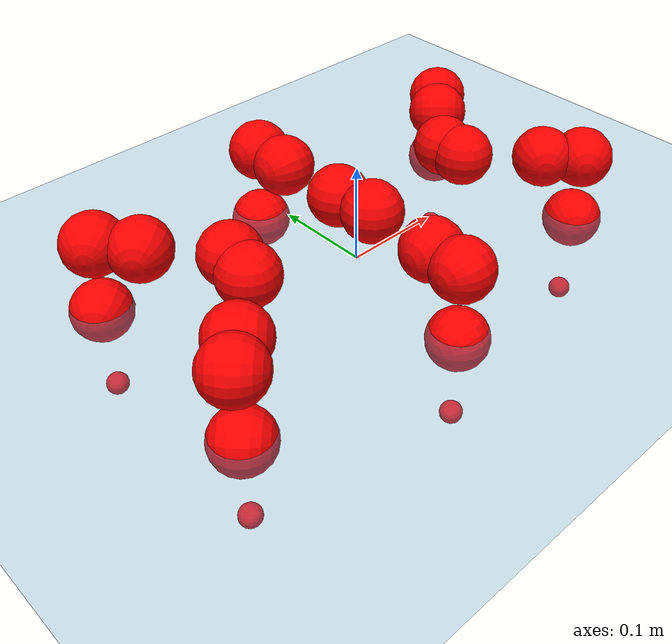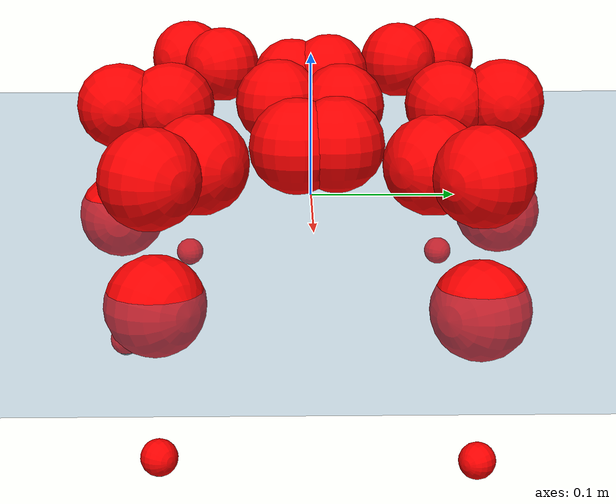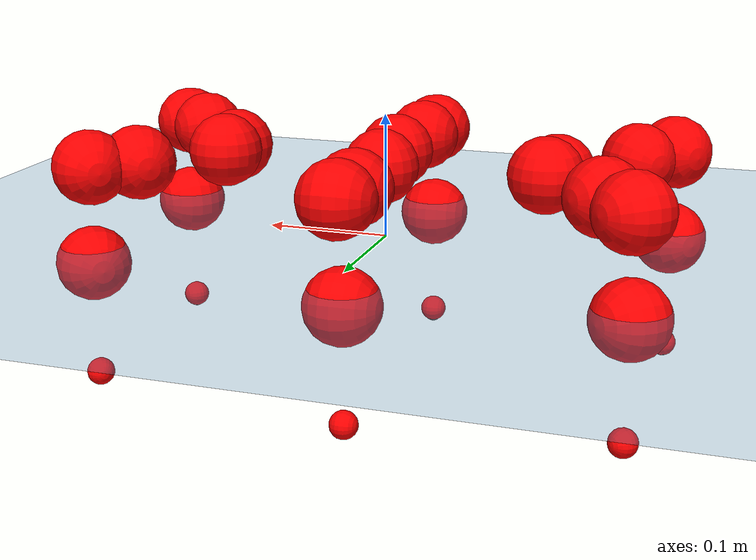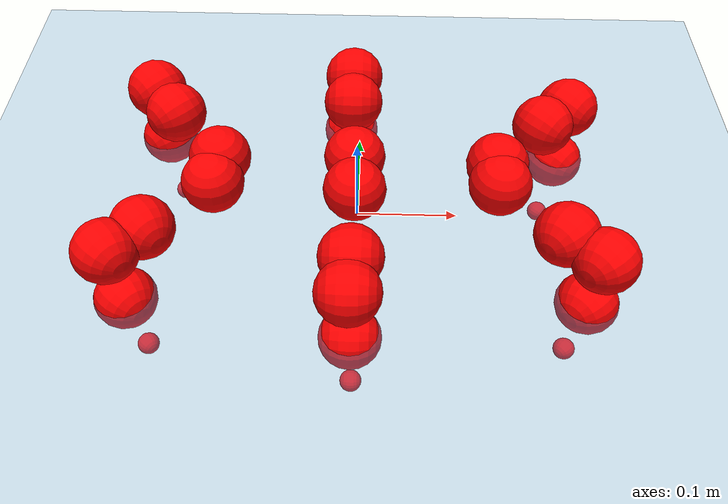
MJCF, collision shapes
<mujoco model="Golem">
  <compiler angle="radian" assetdir="assets" balanceinertia="true" inertiafromgeom="false"/>

  <option timestep="0.005" density="1.2" viscosity="2e-05"/>

  <size nkey="1"/>

  <visual>
    <quality shadowsize="8192"/>
    <map shadowclip="0.5"/>
  </visual>

  <default>
    <default class="/">
      <joint armature="0.01" damping="0.01" frictionloss="0.01"/>
      <geom contype="0" conaffinity="0" group="1" solref="-1000 -80"/>
      <site size="0.01 0.005 0.005" group="5"/>
      <general forcelimited="true" biastype="affine" gainprm="25" biasprm="0 -25 -0.5"/>
      <default class="visual">
        <geom type="mesh" group="2"/>
      </default>
      <default class="collision">
        <geom group="3"/>
      </default>
      <default class="foot">
        <geom size="0.01 0 0" condim="6" group="4" priority="1" solimp="0.015 1 0.01"/>
      </default>
      <default class="reward_collision_sphere">
        <geom group="5" rgba="1 0 0 1"/>
      </default>
    </default>
  </default>

  <asset>
    <texture type="skybox" colorspace="auto" name="//unnamed_texture_0" builtin="gradient" rgb1="0.95 0.95 0.95" rgb2="0.95 0.95 0.95" width="100" height="600"/>
    <texture type="2d" colorspace="auto" name="texplane" builtin="checker" rgb1="0.345 0.575 0.748" rgb2="0.345 0.575 0.748" markrgb="1 1 1" width="512" height="512"/>
    <material name="MatPlane" class="/" texture="texplane" texuniform="true" texrepeat="2 2" specular="0.9"/>
    <mesh name="body" class="/" file="body.stl" scale="0.001 0.001 0.001"/>
    <mesh name="coxa" class="/" file="coxa.stl" scale="0.001 0.001 0.001"/>
    <mesh name="femur" class="/" file="femur.stl" scale="0.001 0.001 0.001"/>
    <mesh name="tibia" class="/" file="tibia.stl" scale="0.001 0.001 0.001"/>
    <mesh name="tarsus" class="/" file="tarsus.stl" scale="0.001 0.001 0.001"/>
  </asset>

  <worldbody>
    <geom name="floor" class="/" size="100 100 0.125" type="plane" group="0" material="MatPlane"/>
    <light name="toplight_shadow" class="/" pos="0 0 5" dir="0.0990148 0.0990148 -0.990148" type="directional" ambient="0.04 0.04 0.04" diffuse="0.55 0.55 0.55" specular="0.12 0.12 0.12"/>
    <light name="toplight_fill" class="/" pos="0 0 5" dir="0.0990148 0.0990148 -0.990148" type="directional" castshadow="false" ambient="0.04 0.04 0.04" diffuse="0.3 0.3 0.3" specular="0.08 0.08 0.08"/>
    <body name="trunk" pos="0.00028628 -0.000215448 0.000365834" quat="1 0.000633712 9.73026e-05 0.000241217">
      <inertial pos="0.00169955 -0.000339559 -0.00223784" quat="1 -0.000242558 -0.000172095 -0.000221379" mass="1.54798" diaginertia="0.00485043 6.36183e-05 0.00992069"/>
      <joint name="//unnamed_joint_0" type="free"/>
      <geom name="//unnamed_geom_1" class="/" pos="0 0 0.0638982" quat="1 0 0 0" type="mesh" rgba="0.9 0.9 0.9 1" mesh="body"/>
      <site name="imu" class="/" pos="0.121609 -0.0136233 0.102307" size="0.00743831"/>
      <camera name="track" class="/" pos="0 -0.733527 0" quat="0.707107 0.707107 0 0" mode="trackcom"/>
      <camera name="ego_camera" class="/" pos="0.112622 0 0.099841" quat="-0.5 -0.5 0.5 0.5"/>
      <body name="coxa_RR" pos="-0.155047 -0.0303785 0.0601617" quat="0.382733 0.00022371 0.000664773 -0.923859">
        <inertial pos="-0.000303688 0.000410203 0.00285854" quat="0.9999 0.0066561 0.0109554 0.0059067" mass="0.0850654" diaginertia="0.00503016 6.85983e-05 0.010305"/>
        <joint name="coxa_joint_RR" class="/" pos="0 0 0" axis="0.00399029 -0.0027015 -0.999988" range="-3.19331 3.09629" armature="0.00752533" damping="0.00904913" frictionloss="0.00846142"/>
        <geom name="//unnamed_geom_2" class="/" type="mesh" rgba="0.2 0.2 0.2 1" mesh="coxa"/>
        <geom name="//unnamed_geom_3" class="reward_collision_sphere" size="0.0297533" pos="-0.0259896 0 0"/>
        <body name="femur_RR" pos="0.0528869 0.000860425 0.0012436" quat="0.49989 -0.500038 0.499837 0.500234">
          <inertial pos="0.000654244 -0.000139065 -7.33648e-05" quat="0.999987 -0.00145381 -0.00489936 6.46768e-05" mass="0.0818858" diaginertia="0.00504789 6.88285e-05 0.00982543"/>
          <joint name="femur_joint_RR" class="/" pos="0 0 0" axis="0.00558159 0.0110725 -0.999923" range="-3.09642 3.12778" armature="0.00651172" damping="0" frictionloss="0.00702363"/>
          <geom name="//unnamed_geom_4" class="/" type="mesh" rgba="0.9 0.9 0.9 1" mesh="femur"/>
          <geom name="//unnamed_geom_5" class="reward_collision_sphere" size="0.0297533"/>
          <body name="tibia_RR" pos="-0.00207236 -0.0380235 0.00144866" quat="-0.000614296 0.999999 0.00121832 0.000250346">
            <inertial pos="0.0027889 0.00278633 -0.00107333" quat="0.999986 0.00306101 -0.00214099 0.00367108" mass="0.0849124" diaginertia="0.00479488 6.5961e-05 0.00959512"/>
            <joint name="tibia_joint_RR" class="/" pos="0 0 0" axis="0.000107217 0.010257 0.999947" stiffness="0.00232204" range="-3.09983 3.12583" armature="0.00652356" damping="0.000432902" frictionloss="0.00767289"/>
            <geom name="//unnamed_geom_6" class="/" type="mesh" rgba="0.2 0.2 0.2 1" mesh="tibia"/>
            <geom name="//unnamed_geom_7" class="reward_collision_sphere" size="0.0297533"/>
            <body name="tarsus_RR" pos="0.0738055 0.00208635 -0.00215833" quat="1 0.000313404 0.000842096 0.000123743">
              <inertial pos="0.0497191 0.00100496 -0.000653244" quat="0.498965 0.50063 0.499702 0.500701" mass="0.0862234" diaginertia="0.00518772 6.62418e-05 0.0106073"/>
              <joint name="tarsus_joint_RR" class="/" pos="0 0 0" axis="0.00698595 -0.0106282 0.999919" stiffness="0.0039133" range="-3.18619 3.151" armature="0.00728654" damping="0.00148496" frictionloss="0.00731243"/>
              <geom name="//unnamed_geom_8" class="/" type="mesh" rgba="0.9 0.9 0.9 1" mesh="tarsus"/>
              <geom name="foot_1" class="foot" size="0.00769806" pos="0.097028 0 0" quat="0 -0.707107 0 0.707107"/>
              <geom name="//unnamed_geom_10" class="reward_collision_sphere" size="0.0297533"/>
              <geom name="//unnamed_geom_11" class="reward_collision_sphere" size="0.0111575" pos="0.0931296 0 0"/>
              <site name="foot_1" class="foot" pos="0.097028 0 0" quat="0 -0.707107 0 0.707107" size="0.00743831"/>
            </body>
          </body>
        </body>
      </body>
      <body name="coxa_RM" pos="-0.0022277 -0.0481037 0.0658536" quat="0.706533 -0.000741426 -0.00020968 -0.707679">
        <inertial pos="0.0025376 -0.00225702 0.0024397" quat="0.999986 0.00399062 -0.00268054 0.00207658" mass="0.0790407" diaginertia="0.00471523 6.63071e-05 0.00984761"/>
        <joint name="coxa_joint_RM" class="/" pos="0 0 0" axis="-0.0117203 0.0011803 -0.999931" range="-3.1434 3.19063" armature="0.0079944" damping="0.00350401" frictionloss="0.00639092"/>
        <geom name="//unnamed_geom_12" class="/" type="mesh" rgba="0.2 0.2 0.2 1" mesh="coxa"/>
        <geom name="//unnamed_geom_13" class="reward_collision_sphere" size="0.0297533" pos="-0.0259896 0 0"/>
        <body name="femur_RM" pos="0.0483156 -0.000965017 -0.00201908" quat="0.500104 -0.499998 0.500034 0.499864">
          <inertial pos="0.00282922 0.000245244 -0.000660036" quat="0.999999 -0.00164202 0.000315976 0.000223418" mass="0.0875128" diaginertia="0.00493544 6.68832e-05 0.00999149"/>
          <joint name="femur_joint_RM" class="/" pos="0 0 0" axis="-0.00122677 0.00748827 -0.999971" range="-3.18953 3.14776" armature="0.0076873" damping="0.0212659" frictionloss="0.0084911"/>
          <geom name="//unnamed_geom_14" class="/" type="mesh" rgba="0.9 0.9 0.9 1" mesh="femur"/>
          <geom name="//unnamed_geom_15" class="reward_collision_sphere" size="0.0297533"/>
          <body name="tibia_RM" pos="0.000839261 -0.0359313 -0.00130941" quat="-0.000435467 1 0.00013799 0.000232461">
            <inertial pos="0.00191033 -0.00307409 -0.00237014" quat="0.999921 0.00571999 -0.00449243 -0.010234" mass="0.0829298" diaginertia="0.00499728 6.53982e-05 0.010206"/>
            <joint name="tibia_joint_RM" class="/" pos="0 0 0" axis="-0.00293805 -0.000408344 0.999996" range="-3.14539 3.09752" armature="0.00818037" damping="0.0175143" frictionloss="0.00803012"/>
            <geom name="//unnamed_geom_16" class="/" type="mesh" rgba="0.2 0.2 0.2 1" mesh="tibia"/>
            <geom name="//unnamed_geom_17" class="reward_collision_sphere" size="0.0297533"/>
            <body name="tarsus_RM" pos="0.0775485 0.00052429 -0.0011489" quat="1 0.000305617 0.000172927 0.000215358">
              <inertial pos="0.0551675 -0.000958236 0.00101213" quat="0.490139 0.501155 0.498529 0.509978" mass="0.0822329" diaginertia="0.00503207 6.81508e-05 0.00958034"/>
              <joint name="tarsus_joint_RM" class="/" pos="0 0 0" axis="0.00124206 0.000575176 0.999999" stiffness="0.000719923" range="-3.10035 3.18825" armature="0.00798014" damping="0.00958539" frictionloss="0.00713888"/>
              <geom name="//unnamed_geom_18" class="/" type="mesh" rgba="0.9 0.9 0.9 1" mesh="tarsus"/>
              <geom name="foot_2" class="foot" size="0.00805391" pos="0.097028 0 0" quat="0 -0.707107 0 0.707107"/>
              <geom name="//unnamed_geom_20" class="reward_collision_sphere" size="0.0297533"/>
              <geom name="//unnamed_geom_21" class="reward_collision_sphere" size="0.0111575" pos="0.0931296 0 0"/>
              <site name="foot_2" class="foot" pos="0.097028 0 0" quat="0 -0.707107 0 0.707107" size="0.00743831"/>
            </body>
          </body>
        </body>
      </body>
      <body name="coxa_RF" pos="0.152261 -0.0290831 0.0639353" quat="0.923891 1.28223e-05 3.49294e-05 -0.382656">
        <inertial pos="-0.00264861 -0.00120432 0.00322991" quat="0.999901 -0.00853183 -0.0111811 -0.000934009" mass="0.0817357" diaginertia="0.00508035 6.66372e-05 0.00999119"/>
        <joint name="coxa_joint_RF" class="/" pos="0 0 0" axis="0.000242055 0.00539196 -0.999985" range="-3.18164 3.18119" armature="0.00641136" damping="0.014844" frictionloss="0.00777823"/>
        <geom name="//unnamed_geom_22" class="/" type="mesh" rgba="0.2 0.2 0.2 1" mesh="coxa"/>
        <geom name="//unnamed_geom_23" class="reward_collision_sphere" size="0.0297533" pos="-0.0259896 0 0"/>
        <body name="femur_RF" pos="0.052408 -0.00249884 0.000994831" quat="0.500323 -0.50063 0.499886 0.499159">
          <inertial pos="-0.000742026 -0.00290497 0.00219398" quat="0.999952 0.0079267 -0.00561995 -0.000834078" mass="0.081416" diaginertia="0.00468321 6.44303e-05 0.0098638"/>
          <joint name="femur_joint_RF" class="/" pos="0 0 0" axis="0.00239257 0.00692161 -0.999973" range="-3.08329 3.1369" armature="0.00740773" damping="0" frictionloss="0.00661779"/>
          <geom name="//unnamed_geom_24" class="/" type="mesh" rgba="0.9 0.9 0.9 1" mesh="femur"/>
          <geom name="//unnamed_geom_25" class="reward_collision_sphere" size="0.0297533"/>
          <body name="tibia_RF" pos="0.00163024 -0.0393212 0.00250027" quat="-0.00135527 0.999999 0.000497764 0.000131581">
            <inertial pos="0.000647358 0.00289369 -0.00179779" quat="0.9999 -0.00432844 0.0106503 -0.00825094" mass="0.0834015" diaginertia="0.00495045 6.58909e-05 0.00981519"/>
            <joint name="tibia_joint_RF" class="/" pos="0 0 0" axis="0.0103781 0.00491145 0.999934" stiffness="0.00576784" range="-3.1408 3.13154" armature="0.0068719" damping="0.00145883" frictionloss="0.00738993"/>
            <geom name="//unnamed_geom_26" class="/" type="mesh" rgba="0.2 0.2 0.2 1" mesh="tibia"/>
            <geom name="//unnamed_geom_27" class="reward_collision_sphere" size="0.0297533"/>
            <body name="tarsus_RF" pos="0.0738039 0.000236177 -0.00241214" quat="0.999999 0.000255419 -0.000601381 -0.00093564">
              <inertial pos="0.0500364 0.000764292 0.00149135" quat="0.49489 0.493716 0.499821 0.511378" mass="0.0775127" diaginertia="0.00488397 6.52349e-05 0.00955647"/>
              <joint name="tarsus_joint_RF" class="/" pos="0 0 0" axis="-0.00985032 -0.00321894 0.999946" range="-3.10131 3.14866" armature="0.0073657" damping="0.0102764" frictionloss="0.00849062"/>
              <geom name="//unnamed_geom_28" class="/" type="mesh" rgba="0.9 0.9 0.9 1" mesh="tarsus"/>
              <geom name="foot_3" class="foot" size="0.00767867" pos="0.097028 0 0" quat="0 -0.707107 0 0.707107"/>
              <geom name="//unnamed_geom_30" class="reward_collision_sphere" size="0.0297533"/>
              <geom name="//unnamed_geom_31" class="reward_collision_sphere" size="0.0111575" pos="0.0931296 0 0"/>
              <site name="foot_3" class="foot" pos="0.097028 0 0" quat="0 -0.707107 0 0.707107" size="0.00743831"/>
            </body>
          </body>
        </body>
      </body>
      <body name="coxa_LR" pos="-0.151522 0.0349536 0.0640844" quat="0.382707 -0.000766526 -0.000940599 0.923869">
        <inertial pos="0.0025017 -0.000897109 -0.00259659" quat="0.999906 -0.00650352 -0.0119834 -0.00168587" mass="0.083634" diaginertia="0.00487228 6.73178e-05 0.0100642"/>
        <joint name="coxa_joint_LR" class="/" pos="0 0 0" axis="0.00563404 -0.00569137 -0.999968" range="-3.138 3.11684" armature="0.00671103" damping="0.00362051" frictionloss="0.00738824"/>
        <geom name="//unnamed_geom_32" class="/" type="mesh" rgba="0.2 0.2 0.2 1" mesh="coxa"/>
        <geom name="//unnamed_geom_33" class="reward_collision_sphere" size="0.0297533" pos="-0.0259896 0 0"/>
        <body name="femur_LR" pos="0.0514969 -0.00328957 0.00151509" quat="0.499943 -0.499658 0.49946 0.500938">
          <inertial pos="0.0015537 0.0004065 -0.0014997" quat="1 0.000158423 0.000360388 -3.54869e-05" mass="0.0840789" diaginertia="0.00494393 6.73377e-05 0.0103473"/>
          <joint name="femur_joint_LR" class="/" pos="0 0 0" axis="0.000422324 0.004011 0.999992" range="-3.09162 3.16504" armature="0.00795776" damping="0" frictionloss="0.00802557"/>
          <geom name="//unnamed_geom_34" class="/" type="mesh" rgba="0.9 0.9 0.9 1" mesh="femur"/>
          <geom name="//unnamed_geom_35" class="reward_collision_sphere" size="0.0297533"/>
          <body name="tibia_LR" pos="-0.000139478 -0.0420851 -0.00573669" quat="-0.000115857 1 0.0003914 -5.11127e-05">
            <inertial pos="0.00154879 -0.00330701 0.00341773" quat="0.999995 -0.00126441 0.00161071 0.00254322" mass="0.0799616" diaginertia="0.00489931 6.89729e-05 0.00994022"/>
            <joint name="tibia_joint_LR" class="/" pos="0 0 0" axis="0.00228587 0.00560412 -0.999982" range="-3.12167 3.09097" armature="0.00672413" damping="0.0126008" frictionloss="0.00648617"/>
            <geom name="//unnamed_geom_36" class="/" type="mesh" rgba="0.2 0.2 0.2 1" mesh="tibia"/>
            <geom name="//unnamed_geom_37" class="reward_collision_sphere" size="0.0297533"/>
            <body name="tarsus_LR" pos="0.0754376 0.00457144 0.00123541" quat="1 -0.000248384 1.03024e-05 9.20871e-05">
              <inertial pos="0.0511613 -0.00150248 3.64155e-05" quat="0.501466 0.500484 0.500404 0.497638" mass="0.0828068" diaginertia="0.00488213 6.48495e-05 0.00989714"/>
              <joint name="tarsus_joint_LR" class="/" pos="0 0 0" axis="0.00429465 0.00639807 -0.99997" range="-3.09723 3.13725" armature="0.00763661" damping="0.0058075" frictionloss="0.00715706"/>
              <geom name="//unnamed_geom_38" class="/" type="mesh" rgba="0.9 0.9 0.9 1" mesh="tarsus"/>
              <geom name="foot_4" class="foot" size="0.0067916" pos="0.097028 0 0" quat="0.707107 0 -0.707107 0"/>
              <geom name="//unnamed_geom_40" class="reward_collision_sphere" size="0.0297533"/>
              <geom name="//unnamed_geom_41" class="reward_collision_sphere" size="0.0111575" pos="0.0931296 0 0"/>
              <site name="foot_4" class="foot" pos="0.097028 0 0" quat="0.707107 0 -0.707107 0" size="0.00743831"/>
            </body>
          </body>
        </body>
      </body>
      <body name="coxa_LM" pos="-0.00326306 0.0475077 0.062506" quat="0.707298 -0.00062224 4.42988e-05 0.706915">
        <inertial pos="-0.00147482 0.000206959 0.00301019" quat="0.999987 -0.00220837 0.00422312 -0.00185295" mass="0.0820934" diaginertia="0.00505796 6.72373e-05 0.0103586"/>
        <joint name="coxa_joint_LM" class="/" pos="0 0 0" axis="-0.00347069 -0.00140196 -0.999993" stiffness="0.00566556" range="-3.19243 3.14172" armature="0.00629234" damping="0.00485441" frictionloss="0.00845059"/>
        <geom name="//unnamed_geom_42" class="/" type="mesh" rgba="0.2 0.2 0.2 1" mesh="coxa"/>
        <geom name="//unnamed_geom_43" class="reward_collision_sphere" size="0.0297533" pos="-0.0259896 0 0"/>
        <body name="femur_LM" pos="0.0481283 0.00359216 0.00121134" quat="0.500262 -0.500132 0.499963 0.499643">
          <inertial pos="-0.000581371 -0.00292357 -0.000517636" quat="0.999906 -0.0096641 -0.00014062 -0.0097359" mass="0.0776697" diaginertia="0.00471359 6.46105e-05 0.00962694"/>
          <joint name="femur_joint_LM" class="/" pos="0 0 0" axis="0.00880514 0.0105844 0.999905" stiffness="0.00287503" range="-3.13265 3.16051" armature="0.00646669" damping="0.0113313" frictionloss="0.00848076"/>
          <geom name="//unnamed_geom_44" class="/" type="mesh" rgba="0.9 0.9 0.9 1" mesh="femur"/>
          <geom name="//unnamed_geom_45" class="reward_collision_sphere" size="0.0297533"/>
          <body name="tibia_LM" pos="-0.00100888 -0.0380771 0.000261409" quat="-2.61204e-05 1 -0.000136269 0.000238721">
            <inertial pos="-0.00180838 0.000963085 -0.000946309" quat="1 -0.000113655 -0.000525842 8.5792e-05" mass="0.0849392" diaginertia="0.00470924 6.60507e-05 0.00976862"/>
            <joint name="tibia_joint_LM" class="/" pos="0 0 0" axis="-0.00179117 0.00289516 -0.999994" range="-3.08386 3.13512" armature="0.00726416" damping="0" frictionloss="0.00644565"/>
            <geom name="//unnamed_geom_46" class="/" type="mesh" rgba="0.2 0.2 0.2 1" mesh="tibia"/>
            <geom name="//unnamed_geom_47" class="reward_collision_sphere" size="0.0297533"/>
            <body name="tarsus_LM" pos="0.0796608 -0.000588475 -0.0034558" quat="1 0.000184972 0.000528445 0.000147201">
              <inertial pos="0.0497194 -0.000743896 -0.000216904" quat="0.501587 0.499964 0.502539 0.495884" mass="0.0788613" diaginertia="0.00478048 6.57619e-05 0.0101772"/>
              <joint name="tarsus_joint_LM" class="/" pos="0 0 0" axis="0.00295623 0.0120757 -0.999923" range="-3.12267 3.08221" armature="0.00745561" damping="0.0110338" frictionloss="0.00645001"/>
              <geom name="//unnamed_geom_48" class="/" type="mesh" rgba="0.9 0.9 0.9 1" mesh="tarsus"/>
              <geom name="foot_5" class="foot" size="0.00730454" pos="0.097028 0 0" quat="0.707107 0 -0.707107 0"/>
              <geom name="//unnamed_geom_50" class="reward_collision_sphere" size="0.0297533"/>
              <geom name="//unnamed_geom_51" class="reward_collision_sphere" size="0.0111575" pos="0.0931296 0 0"/>
              <site name="foot_5" class="foot" pos="0.097028 0 0" quat="0.707107 0 -0.707107 0" size="0.00743831"/>
            </body>
          </body>
        </body>
      </body>
      <body name="coxa_LF" pos="0.151533 0.0320973 0.0648005" quat="0.923569 -0.000449654 -0.000800795 0.38343">
        <inertial pos="0.00124363 -0.00269326 0.000682903" quat="0.999998 0.000990693 0.000658437 0.00156329" mass="0.079293" diaginertia="0.00473034 6.20555e-05 0.00955003"/>
        <joint name="coxa_joint_LF" class="/" pos="0 0 0" axis="-0.0040374 -0.00121373 -0.999991" range="-3.19607 3.10667" armature="0.0076953" damping="0" frictionloss="0.0083797"/>
        <geom name="//unnamed_geom_52" class="/" type="mesh" rgba="0.2 0.2 0.2 1" mesh="coxa"/>
        <geom name="//unnamed_geom_53" class="reward_collision_sphere" size="0.0297533" pos="-0.0259896 0 0"/>
        <body name="femur_LF" pos="0.0481979 0.0028285 -0.00187927" quat="0.500542 -0.50068 0.498768 0.500007">
          <inertial pos="0.000329838 -0.000738867 0.000827153" quat="0.999972 -0.00213854 0.0042017 0.00574607" mass="0.0816929" diaginertia="0.0047867 6.41662e-05 0.00952153"/>
          <joint name="femur_joint_LF" class="/" pos="0 0 0" axis="-0.0154745 -0.00147601 0.999879" range="-3.15537 3.09361" armature="0.00782174" damping="0.013824" frictionloss="0.00696236"/>
          <geom name="//unnamed_geom_54" class="/" type="mesh" rgba="0.9 0.9 0.9 1" mesh="femur"/>
          <geom name="//unnamed_geom_55" class="reward_collision_sphere" size="0.0297533"/>
          <body name="tibia_LF" pos="0.0005092 -0.0386369 -0.00168126" quat="-3.83187e-06 1 3.2905e-06 5.71738e-06">
            <inertial pos="-3.19893e-05 0.000576156 -0.000688317" quat="0.999924 0.00609865 -0.00293724 0.0103516" mass="0.0854364" diaginertia="0.00482793 6.44619e-05 0.00962626"/>
            <joint name="tibia_joint_LF" class="/" pos="0 0 0" axis="-0.00381338 -0.0146907 -0.999885" stiffness="0.00828767" range="-3.1728 3.12061" armature="0.00845369" damping="0.0122933" frictionloss="0.00638561"/>
            <geom name="//unnamed_geom_56" class="/" type="mesh" rgba="0.2 0.2 0.2 1" mesh="tibia"/>
            <geom name="//unnamed_geom_57" class="reward_collision_sphere" size="0.0297533"/>
            <body name="tarsus_LF" pos="0.0785337 0.00121306 0.00187152" quat="1 0.000101668 -7.01906e-05 -9.03504e-05">
              <inertial pos="0.0504227 0.000667589 0.00171218" quat="0.501271 0.500231 0.499342 0.499153" mass="0.0807089" diaginertia="0.00483689 6.4751e-05 0.00957118"/>
              <joint name="tarsus_joint_LF" class="/" pos="0 0 0" axis="-0.0148953 -0.000666179 -0.999889" stiffness="0.0254378" range="-3.13891 3.19256" armature="0.00749654" damping="0.0241476" frictionloss="0.0071101"/>
              <geom name="//unnamed_geom_58" class="/" type="mesh" rgba="0.9 0.9 0.9 1" mesh="tarsus"/>
              <geom name="foot_6" class="foot" size="0.00723547" pos="0.097028 0 0" quat="0.707107 0 -0.707107 0"/>
              <geom name="//unnamed_geom_60" class="reward_collision_sphere" size="0.0297533"/>
              <geom name="//unnamed_geom_61" class="reward_collision_sphere" size="0.0111575" pos="0.0931296 0 0"/>
              <site name="foot_6" class="foot" pos="0.097028 0 0" quat="0.707107 0 -0.707107 0" size="0.00743831"/>
            </body>
          </body>
        </body>
      </body>
    </body>
  </worldbody>

  <contact>
    <pair class="/" geom1="floor" geom2="foot_1" name="//unnamed_contact_0"/>
    <pair class="/" geom1="floor" geom2="foot_2" name="//unnamed_contact_1"/>
    <pair class="/" geom1="floor" geom2="foot_3" name="//unnamed_contact_2"/>
    <pair class="/" geom1="floor" geom2="foot_4" name="//unnamed_contact_3"/>
    <pair class="/" geom1="floor" geom2="foot_5" name="//unnamed_contact_4"/>
    <pair class="/" geom1="floor" geom2="foot_6" name="//unnamed_contact_5"/>
  </contact>

  <actuator>
    <general name="coxa_joint_RR" class="/" joint="coxa_joint_RR" forcerange="-6.00477 6.00477" gainprm="17.6637" biasprm="0 -17.6637 -0.365021"/>
    <general name="femur_joint_RR" class="/" joint="femur_joint_RR" forcerange="-5.8564 5.8564" gainprm="17.6637" biasprm="0 -17.6637 -0.365021"/>
    <general name="tibia_joint_RR" class="/" joint="tibia_joint_RR" forcerange="-5.35475 5.35475" gainprm="17.6637" biasprm="0 -17.6637 -0.365021"/>
    <general name="tarsus_joint_RR" class="/" joint="tarsus_joint_RR" forcerange="-5.3782 5.3782" gainprm="17.6637" biasprm="0 -17.6637 -0.365021"/>
    <general name="coxa_joint_RM" class="/" joint="coxa_joint_RM" forcerange="-6.00198 6.00198" gainprm="17.6637" biasprm="0 -17.6637 -0.365021"/>
    <general name="femur_joint_RM" class="/" joint="femur_joint_RM" forcerange="-5.96018 5.96018" gainprm="17.6637" biasprm="0 -17.6637 -0.365021"/>
    <general name="tibia_joint_RM" class="/" joint="tibia_joint_RM" forcerange="-4.98211 4.98211" gainprm="17.6637" biasprm="0 -17.6637 -0.365021"/>
    <general name="tarsus_joint_RM" class="/" joint="tarsus_joint_RM" forcerange="-5.76255 5.76255" gainprm="17.6637" biasprm="0 -17.6637 -0.365021"/>
    <general name="coxa_joint_RF" class="/" joint="coxa_joint_RF" forcerange="-5.88628 5.88628" gainprm="17.6637" biasprm="0 -17.6637 -0.365021"/>
    <general name="femur_joint_RF" class="/" joint="femur_joint_RF" forcerange="-4.97907 4.97907" gainprm="17.6637" biasprm="0 -17.6637 -0.365021"/>
    <general name="tibia_joint_RF" class="/" joint="tibia_joint_RF" forcerange="-5.02519 5.02519" gainprm="17.6637" biasprm="0 -17.6637 -0.365021"/>
    <general name="tarsus_joint_RF" class="/" joint="tarsus_joint_RF" forcerange="-5.25202 5.25202" gainprm="17.6637" biasprm="0 -17.6637 -0.365021"/>
    <general name="coxa_joint_LR" class="/" joint="coxa_joint_LR" forcerange="-5.92631 5.92631" gainprm="17.6637" biasprm="0 -17.6637 -0.365021"/>
    <general name="femur_joint_LR" class="/" joint="femur_joint_LR" forcerange="-4.85446 4.85446" gainprm="17.6637" biasprm="0 -17.6637 -0.365021"/>
    <general name="tibia_joint_LR" class="/" joint="tibia_joint_LR" forcerange="-5.00362 5.00362" gainprm="17.6637" biasprm="0 -17.6637 -0.365021"/>
    <general name="tarsus_joint_LR" class="/" joint="tarsus_joint_LR" forcerange="-5.61835 5.61835" gainprm="17.6637" biasprm="0 -17.6637 -0.365021"/>
    <general name="coxa_joint_LM" class="/" joint="coxa_joint_LM" forcerange="-5.39058 5.39058" gainprm="17.6637" biasprm="0 -17.6637 -0.365021"/>
    <general name="femur_joint_LM" class="/" joint="femur_joint_LM" forcerange="-5.40381 5.40381" gainprm="17.6637" biasprm="0 -17.6637 -0.365021"/>
    <general name="tibia_joint_LM" class="/" joint="tibia_joint_LM" forcerange="-5.08917 5.08917" gainprm="17.6637" biasprm="0 -17.6637 -0.365021"/>
    <general name="tarsus_joint_LM" class="/" joint="tarsus_joint_LM" forcerange="-5.43559 5.43559" gainprm="17.6637" biasprm="0 -17.6637 -0.365021"/>
    <general name="coxa_joint_LF" class="/" joint="coxa_joint_LF" forcerange="-5.95442 5.95442" gainprm="17.6637" biasprm="0 -17.6637 -0.365021"/>
    <general name="femur_joint_LF" class="/" joint="femur_joint_LF" forcerange="-5.93478 5.93478" gainprm="17.6637" biasprm="0 -17.6637 -0.365021"/>
    <general name="tibia_joint_LF" class="/" joint="tibia_joint_LF" forcerange="-5.39299 5.39299" gainprm="17.6637" biasprm="0 -17.6637 -0.365021"/>
    <general name="tarsus_joint_LF" class="/" joint="tarsus_joint_LF" forcerange="-5.27783 5.27783" gainprm="17.6637" biasprm="0 -17.6637 -0.365021"/>
  </actuator>

  <sensor>
    <gyro site="imu" name="imu_angular_velocity"/>
    <velocimeter site="imu" name="imu_linear_velocity"/>
    <framelinvel objtype="site" objname="foot_1" name="foot_1_global_linear_velocity"/>
    <framelinvel objtype="site" objname="foot_2" name="foot_2_global_linear_velocity"/>
    <framelinvel objtype="site" objname="foot_3" name="foot_3_global_linear_velocity"/>
    <framelinvel objtype="site" objname="foot_4" name="foot_4_global_linear_velocity"/>
    <framelinvel objtype="site" objname="foot_5" name="foot_5_global_linear_velocity"/>
    <framelinvel objtype="site" objname="foot_6" name="foot_6_global_linear_velocity"/>
  </sensor>

  <keyframe>
    <key name="home" qpos="0 0 0.1457 1 0 0 0 0 0 0 0 0 0 0 0 0 0 0 0 0 0 0 0 0 0 0 0 0 0 0 0"/>
  </keyframe>
</mujoco>
